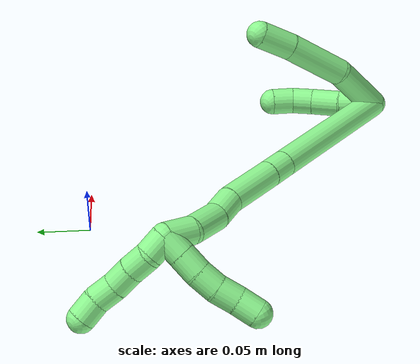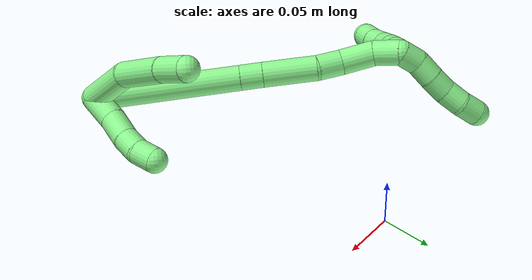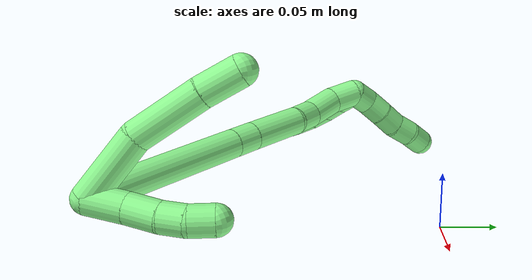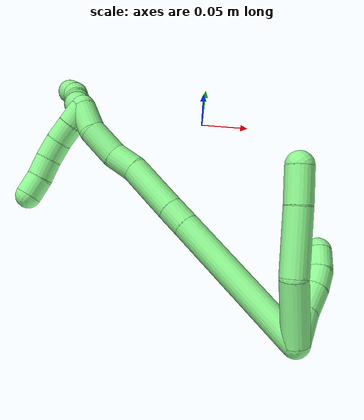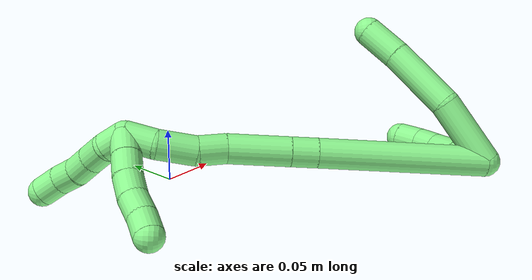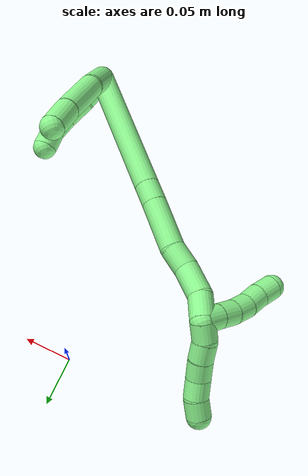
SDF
<sdf version="1.7">
 <world name="default">
  <model name="13">
   <static>0</static>
   <link name="13">
    <collision name="collision-cylinder-e_1_2_8">
     <pose>-0.022737 -0.005674 0.017538 0.3129 -0.889568 -0.150086</pose>
     <geometry><cylinder><radius>0.0125</radius><length>0.05854</length></cylinder></geometry>
     <surface>
      <friction><ode><mu>1.16</mu><mu2>1.16</mu2><slip1>0</slip1><slip2>0</slip2></ode></friction>
      <contact><ode><kp>1e+06</kp><kd>1</kd><max_vel>0</max_vel><min_depth>0.001</min_depth></ode></contact>
     </surface>
    </collision>
    <visual name="visual-cylinder-e_1_2_8">
     <pose>-0.022737 -0.005674 0.017538 0.3129 -0.889568 -0.150086</pose>
     <geometry><cylinder><radius>0.0125</radius><length>0.05854</length></cylinder></geometry>
     <material><ambient>0.564706 0.984314 0.572549 1</ambient></material>
    </visual>
    <collision name="collision-cylinder-e_2_8_9">
     <pose>-0.063159 -0.024508 0.054387 0.598162 -0.64782 -0.206299</pose>
     <geometry><cylinder><radius>0.0125</radius><length>0.058613</length></cylinder></geometry>
     <surface>
      <friction><ode><mu>1.16</mu><mu2>1.16</mu2><slip1>0</slip1><slip2>0</slip2></ode></friction>
      <contact><ode><kp>1e+06</kp><kd>1</kd><max_vel>0</max_vel><min_depth>0.001</min_depth></ode></contact>
     </surface>
    </collision>
    <visual name="visual-cylinder-e_2_8_9">
     <pose>-0.063159 -0.024508 0.054387 0.598162 -0.64782 -0.206299</pose>
     <geometry><cylinder><radius>0.0125</radius><length>0.058613</length></cylinder></geometry>
     <material><ambient>0.564706 0.984314 0.572549 1</ambient></material>
    </visual>
    <collision name="collision-cylinder-e_3_9_6">
     <pose>-0.089618 -0.045512 0.085153 0.600526 -0.563591 -0.178794</pose>
     <geometry><cylinder><radius>0.0125</radius><length>0.032847</length></cylinder></geometry>
     <surface>
      <friction><ode><mu>1.16</mu><mu2>1.16</mu2><slip1>0</slip1><slip2>0</slip2></ode></friction>
      <contact><ode><kp>1e+06</kp><kd>1</kd><max_vel>0</max_vel><min_depth>0.001</min_depth></ode></contact>
     </surface>
    </collision>
    <visual name="visual-cylinder-e_3_9_6">
     <pose>-0.089618 -0.045512 0.085153 0.600526 -0.563591 -0.178794</pose>
     <geometry><cylinder><radius>0.0125</radius><length>0.032847</length></cylinder></geometry>
     <material><ambient>0.564706 0.984314 0.572549 1</ambient></material>
    </visual>
    <collision name="collision-cylinder-e_1_2_10">
     <pose>0.000333 -0.013709 0.008645 1.00821 0.020549 0.011336</pose>
     <geometry><cylinder><radius>0.0125</radius><length>0.032421</length></cylinder></geometry>
     <surface>
      <friction><ode><mu>1.16</mu><mu2>1.16</mu2><slip1>0</slip1><slip2>0</slip2></ode></friction>
      <contact><ode><kp>1e+06</kp><kd>1</kd><max_vel>0</max_vel><min_depth>0.001</min_depth></ode></contact>
     </surface>
    </collision>
    <visual name="visual-cylinder-e_1_2_10">
     <pose>0.000333 -0.013709 0.008645 1.00821 0.020549 0.011336</pose>
     <geometry><cylinder><radius>0.0125</radius><length>0.032421</length></cylinder></geometry>
     <material><ambient>0.564706 0.984314 0.572549 1</ambient></material>
    </visual>
    <collision name="collision-cylinder-e_2_10_11">
     <pose>0.000522 -0.039562 0.023197 1.11797 -0.010655 -0.006665</pose>
     <geometry><cylinder><radius>0.0125</radius><length>0.02701</length></cylinder></geometry>
     <surface>
      <friction><ode><mu>1.16</mu><mu2>1.16</mu2><slip1>0</slip1><slip2>0</slip2></ode></friction>
      <contact><ode><kp>1e+06</kp><kd>1</kd><max_vel>0</max_vel><min_depth>0.001</min_depth></ode></contact>
     </surface>
    </collision>
    <visual name="visual-cylinder-e_2_10_11">
     <pose>0.000522 -0.039562 0.023197 1.11797 -0.010655 -0.006665</pose>
     <geometry><cylinder><radius>0.0125</radius><length>0.02701</length></cylinder></geometry>
     <material><ambient>0.564706 0.984314 0.572549 1</ambient></material>
    </visual>
    <collision name="collision-cylinder-e_3_11_12">
     <pose>-0.000228 -0.06009 0.03469 0.983217 -0.060106 -0.032191</pose>
     <geometry><cylinder><radius>0.0125</radius><length>0.020186</length></cylinder></geometry>
     <surface>
      <friction><ode><mu>1.16</mu><mu2>1.16</mu2><slip1>0</slip1><slip2>0</slip2></ode></friction>
      <contact><ode><kp>1e+06</kp><kd>1</kd><max_vel>0</max_vel><min_depth>0.001</min_depth></ode></contact>
     </surface>
    </collision>
    <visual name="visual-cylinder-e_3_11_12">
     <pose>-0.000228 -0.06009 0.03469 0.983217 -0.060106 -0.032191</pose>
     <geometry><cylinder><radius>0.0125</radius><length>0.020186</length></cylinder></geometry>
     <material><ambient>0.564706 0.984314 0.572549 1</ambient></material>
    </visual>
    <collision name="collision-cylinder-e_4_12_5">
     <pose>-0.001652 -0.07502 0.048044 0.700064 -0.080327 -0.029338</pose>
     <geometry><cylinder><radius>0.0125</radius><length>0.020383</length></cylinder></geometry>
     <surface>
      <friction><ode><mu>1.16</mu><mu2>1.16</mu2><slip1>0</slip1><slip2>0</slip2></ode></friction>
      <contact><ode><kp>1e+06</kp><kd>1</kd><max_vel>0</max_vel><min_depth>0.001</min_depth></ode></contact>
     </surface>
    </collision>
    <visual name="visual-cylinder-e_4_12_5">
     <pose>-0.001652 -0.07502 0.048044 0.700064 -0.080327 -0.029338</pose>
     <geometry><cylinder><radius>0.0125</radius><length>0.020383</length></cylinder></geometry>
     <material><ambient>0.564706 0.984314 0.572549 1</ambient></material>
    </visual>
    <collision name="collision-cylinder-e_1_2_13">
     <pose>-0.000969 0.003128 0.070473 -0.044361 -0.013739 0.000305</pose>
     <geometry><cylinder><radius>0.0125</radius><length>0.141098</length></cylinder></geometry>
     <surface>
      <friction><ode><mu>1.16</mu><mu2>1.16</mu2><slip1>0</slip1><slip2>0</slip2></ode></friction>
      <contact><ode><kp>1e+06</kp><kd>1</kd><max_vel>0</max_vel><min_depth>0.001</min_depth></ode></contact>
     </surface>
    </collision>
    <visual name="visual-cylinder-e_1_2_13">
     <pose>-0.000969 0.003128 0.070473 -0.044361 -0.013739 0.000305</pose>
     <geometry><cylinder><radius>0.0125</radius><length>0.141098</length></cylinder></geometry>
     <material><ambient>0.564706 0.984314 0.572549 1</ambient></material>
    </visual>
    <collision name="collision-cylinder-e_2_13_14">
     <pose>-0.00205 0.006768 0.151906 -0.046603 -0.010146 0.000236</pose>
     <geometry><cylinder><radius>0.0125</radius><length>0.021947</length></cylinder></geometry>
     <surface>
      <friction><ode><mu>1.16</mu><mu2>1.16</mu2><slip1>0</slip1><slip2>0</slip2></ode></friction>
      <contact><ode><kp>1e+06</kp><kd>1</kd><max_vel>0</max_vel><min_depth>0.001</min_depth></ode></contact>
     </surface>
    </collision>
    <visual name="visual-cylinder-e_2_13_14">
     <pose>-0.00205 0.006768 0.151906 -0.046603 -0.010146 0.000236</pose>
     <geometry><cylinder><radius>0.0125</radius><length>0.021947</length></cylinder></geometry>
     <material><ambient>0.564706 0.984314 0.572549 1</ambient></material>
    </visual>
    <collision name="collision-cylinder-e_3_14_15">
     <pose>-0.002418 0.008116 0.189282 -0.031666 -0.009736 0.000154</pose>
     <geometry><cylinder><radius>0.0125</radius><length>0.052859</length></cylinder></geometry>
     <surface>
      <friction><ode><mu>1.16</mu><mu2>1.16</mu2><slip1>0</slip1><slip2>0</slip2></ode></friction>
      <contact><ode><kp>1e+06</kp><kd>1</kd><max_vel>0</max_vel><min_depth>0.001</min_depth></ode></contact>
     </surface>
    </collision>
    <visual name="visual-cylinder-e_3_14_15">
     <pose>-0.002418 0.008116 0.189282 -0.031666 -0.009736 0.000154</pose>
     <geometry><cylinder><radius>0.0125</radius><length>0.052859</length></cylinder></geometry>
     <material><ambient>0.564706 0.984314 0.572549 1</ambient></material>
    </visual>
    <collision name="collision-cylinder-e_4_15_16">
     <pose>-0.001701 0.0118 0.227592 -0.234994 0.079567 -0.009397</pose>
     <geometry><cylinder><radius>0.0125</radius><length>0.024539</length></cylinder></geometry>
     <surface>
      <friction><ode><mu>1.16</mu><mu2>1.16</mu2><slip1>0</slip1><slip2>0</slip2></ode></friction>
      <contact><ode><kp>1e+06</kp><kd>1</kd><max_vel>0</max_vel><min_depth>0.001</min_depth></ode></contact>
     </surface>
    </collision>
    <visual name="visual-cylinder-e_4_15_16">
     <pose>-0.001701 0.0118 0.227592 -0.234994 0.079567 -0.009397</pose>
     <geometry><cylinder><radius>0.0125</radius><length>0.024539</length></cylinder></geometry>
     <material><ambient>0.564706 0.984314 0.572549 1</ambient></material>
    </visual>
    <collision name="collision-cylinder-e_5_16_17">
     <pose>-0.003099 0.016592 0.255798 -0.118625 -0.143498 0.008536</pose>
     <geometry><cylinder><radius>0.0125</radius><length>0.033193</length></cylinder></geometry>
     <surface>
      <friction><ode><mu>1.16</mu><mu2>1.16</mu2><slip1>0</slip1><slip2>0</slip2></ode></friction>
      <contact><ode><kp>1e+06</kp><kd>1</kd><max_vel>0</max_vel><min_depth>0.001</min_depth></ode></contact>
     </surface>
    </collision>
    <visual name="visual-cylinder-e_5_16_17">
     <pose>-0.003099 0.016592 0.255798 -0.118625 -0.143498 0.008536</pose>
     <geometry><cylinder><radius>0.0125</radius><length>0.033193</length></cylinder></geometry>
     <material><ambient>0.564706 0.984314 0.572549 1</ambient></material>
    </visual>
    <collision name="collision-cylinder-e_6_17_1">
     <pose>-0.007801 0.015562 0.284737 0.231251 -0.177599 -0.020681</pose>
     <geometry><cylinder><radius>0.0125</radius><length>0.026364</length></cylinder></geometry>
     <surface>
      <friction><ode><mu>1.16</mu><mu2>1.16</mu2><slip1>0</slip1><slip2>0</slip2></ode></friction>
      <contact><ode><kp>1e+06</kp><kd>1</kd><max_vel>0</max_vel><min_depth>0.001</min_depth></ode></contact>
     </surface>
    </collision>
    <visual name="visual-cylinder-e_6_17_1">
     <pose>-0.007801 0.015562 0.284737 0.231251 -0.177599 -0.020681</pose>
     <geometry><cylinder><radius>0.0125</radius><length>0.026364</length></cylinder></geometry>
     <material><ambient>0.564706 0.984314 0.572549 1</ambient></material>
    </visual>
    <collision name="collision-cylinder-e_1_1_18">
     <pose>-0.003455 0.019888 0.295894 -1.76987 0.730804 -0.874583</pose>
     <geometry><cylinder><radius>0.0125</radius><length>0.02</length></cylinder></geometry>
     <surface>
      <friction><ode><mu>1.16</mu><mu2>1.16</mu2><slip1>0</slip1><slip2>0</slip2></ode></friction>
      <contact><ode><kp>1e+06</kp><kd>1</kd><max_vel>0</max_vel><min_depth>0.001</min_depth></ode></contact>
     </surface>
    </collision>
    <visual name="visual-cylinder-e_1_1_18">
     <pose>-0.003455 0.019888 0.295894 -1.76987 0.730804 -0.874583</pose>
     <geometry><cylinder><radius>0.0125</radius><length>0.02</length></cylinder></geometry>
     <material><ambient>0.564706 0.984314 0.572549 1</ambient></material>
    </visual>
    <collision name="collision-cylinder-e_2_18_19">
     <pose>0.010077 0.034325 0.292999 -1.76745 0.755648 -0.901148</pose>
     <geometry><cylinder><radius>0.0125</radius><length>0.02</length></cylinder></geometry>
     <surface>
      <friction><ode><mu>1.16</mu><mu2>1.16</mu2><slip1>0</slip1><slip2>0</slip2></ode></friction>
      <contact><ode><kp>1e+06</kp><kd>1</kd><max_vel>0</max_vel><min_depth>0.001</min_depth></ode></contact>
     </surface>
    </collision>
    <visual name="visual-cylinder-e_2_18_19">
     <pose>0.010077 0.034325 0.292999 -1.76745 0.755648 -0.901148</pose>
     <geometry><cylinder><radius>0.0125</radius><length>0.02</length></cylinder></geometry>
     <material><ambient>0.564706 0.984314 0.572549 1</ambient></material>
    </visual>
    <collision name="collision-cylinder-e_3_19_20">
     <pose>0.023346 0.048626 0.288822 -1.938 0.695967 -0.971879</pose>
     <geometry><cylinder><radius>0.0125</radius><length>0.02</length></cylinder></geometry>
     <surface>
      <friction><ode><mu>1.16</mu><mu2>1.16</mu2><slip1>0</slip1><slip2>0</slip2></ode></friction>
      <contact><ode><kp>1e+06</kp><kd>1</kd><max_vel>0</max_vel><min_depth>0.001</min_depth></ode></contact>
     </surface>
    </collision>
    <visual name="visual-cylinder-e_3_19_20">
     <pose>0.023346 0.048626 0.288822 -1.938 0.695967 -0.971879</pose>
     <geometry><cylinder><radius>0.0125</radius><length>0.02</length></cylinder></geometry>
     <material><ambient>0.564706 0.984314 0.572549 1</ambient></material>
    </visual>
    <collision name="collision-cylinder-e_4_20_21">
     <pose>0.035167 0.063052 0.281827 -2.09914 0.571572 -0.945971</pose>
     <geometry><cylinder><radius>0.0125</radius><length>0.02</length></cylinder></geometry>
     <surface>
      <friction><ode><mu>1.16</mu><mu2>1.16</mu2><slip1>0</slip1><slip2>0</slip2></ode></friction>
      <contact><ode><kp>1e+06</kp><kd>1</kd><max_vel>0</max_vel><min_depth>0.001</min_depth></ode></contact>
     </surface>
    </collision>
    <visual name="visual-cylinder-e_4_20_21">
     <pose>0.035167 0.063052 0.281827 -2.09914 0.571572 -0.945971</pose>
     <geometry><cylinder><radius>0.0125</radius><length>0.02</length></cylinder></geometry>
     <material><ambient>0.564706 0.984314 0.572549 1</ambient></material>
    </visual>
    <collision name="collision-cylinder-e_5_21_4">
     <pose>0.045638 0.078315 0.274362 -1.95411 0.530664 -0.765462</pose>
     <geometry><cylinder><radius>0.0125</radius><length>0.02</length></cylinder></geometry>
     <surface>
      <friction><ode><mu>1.16</mu><mu2>1.16</mu2><slip1>0</slip1><slip2>0</slip2></ode></friction>
      <contact><ode><kp>1e+06</kp><kd>1</kd><max_vel>0</max_vel><min_depth>0.001</min_depth></ode></contact>
     </surface>
    </collision>
    <visual name="visual-cylinder-e_5_21_4">
     <pose>0.045638 0.078315 0.274362 -1.95411 0.530664 -0.765462</pose>
     <geometry><cylinder><radius>0.0125</radius><length>0.02</length></cylinder></geometry>
     <material><ambient>0.564706 0.984314 0.572549 1</ambient></material>
    </visual>
    <collision name="collision-cylinder-e_1_1_22">
     <pose>-0.004365 0.010176 0.305173 0.299737 0.614439 0.095741</pose>
     <geometry><cylinder><radius>0.0125</radius><length>0.02</length></cylinder></geometry>
     <surface>
      <friction><ode><mu>1.16</mu><mu2>1.16</mu2><slip1>0</slip1><slip2>0</slip2></ode></friction>
      <contact><ode><kp>1e+06</kp><kd>1</kd><max_vel>0</max_vel><min_depth>0.001</min_depth></ode></contact>
     </surface>
    </collision>
    <visual name="visual-cylinder-e_1_1_22">
     <pose>-0.004365 0.010176 0.305173 0.299737 0.614439 0.095741</pose>
     <geometry><cylinder><radius>0.0125</radius><length>0.02</length></cylinder></geometry>
     <material><ambient>0.564706 0.984314 0.572549 1</ambient></material>
    </visual>
    <collision name="collision-cylinder-e_2_22_23">
     <pose>0.007476 0.002562 0.318983 0.71399 0.652942 0.251239</pose>
     <geometry><cylinder><radius>0.0125</radius><length>0.02</length></cylinder></geometry>
     <surface>
      <friction><ode><mu>1.16</mu><mu2>1.16</mu2><slip1>0</slip1><slip2>0</slip2></ode></friction>
      <contact><ode><kp>1e+06</kp><kd>1</kd><max_vel>0</max_vel><min_depth>0.001</min_depth></ode></contact>
     </surface>
    </collision>
    <visual name="visual-cylinder-e_2_22_23">
     <pose>0.007476 0.002562 0.318983 0.71399 0.652942 0.251239</pose>
     <geometry><cylinder><radius>0.0125</radius><length>0.02</length></cylinder></geometry>
     <material><ambient>0.564706 0.984314 0.572549 1</ambient></material>
    </visual>
    <collision name="collision-cylinder-e_3_23_24">
     <pose>0.019997 -0.007004 0.331263 0.607578 0.700504 0.228053</pose>
     <geometry><cylinder><radius>0.0125</radius><length>0.02</length></cylinder></geometry>
     <surface>
      <friction><ode><mu>1.16</mu><mu2>1.16</mu2><slip1>0</slip1><slip2>0</slip2></ode></friction>
      <contact><ode><kp>1e+06</kp><kd>1</kd><max_vel>0</max_vel><min_depth>0.001</min_depth></ode></contact>
     </surface>
    </collision>
    <visual name="visual-cylinder-e_3_23_24">
     <pose>0.019997 -0.007004 0.331263 0.607578 0.700504 0.228053</pose>
     <geometry><cylinder><radius>0.0125</radius><length>0.02</length></cylinder></geometry>
     <material><ambient>0.564706 0.984314 0.572549 1</ambient></material>
    </visual>
    <collision name="collision-cylinder-e_4_24_25">
     <pose>0.031428 -0.015954 0.344897 0.557306 0.521868 0.152492</pose>
     <geometry><cylinder><radius>0.0125</radius><length>0.02</length></cylinder></geometry>
     <surface>
      <friction><ode><mu>1.16</mu><mu2>1.16</mu2><slip1>0</slip1><slip2>0</slip2></ode></friction>
      <contact><ode><kp>1e+06</kp><kd>1</kd><max_vel>0</max_vel><min_depth>0.001</min_depth></ode></contact>
     </surface>
    </collision>
    <visual name="visual-cylinder-e_4_24_25">
     <pose>0.031428 -0.015954 0.344897 0.557306 0.521868 0.152492</pose>
     <geometry><cylinder><radius>0.0125</radius><length>0.02</length></cylinder></geometry>
     <material><ambient>0.564706 0.984314 0.572549 1</ambient></material>
    </visual>
    <collision name="collision-cylinder-e_5_25_3">
     <pose>0.04246 -0.022756 0.359904 0.282177 0.649346 0.095539</pose>
     <geometry><cylinder><radius>0.0125</radius><length>0.02</length></cylinder></geometry>
     <surface>
      <friction><ode><mu>1.16</mu><mu2>1.16</mu2><slip1>0</slip1><slip2>0</slip2></ode></friction>
      <contact><ode><kp>1e+06</kp><kd>1</kd><max_vel>0</max_vel><min_depth>0.001</min_depth></ode></contact>
     </surface>
    </collision>
    <visual name="visual-cylinder-e_5_25_3">
     <pose>0.04246 -0.022756 0.359904 0.282177 0.649346 0.095539</pose>
     <geometry><cylinder><radius>0.0125</radius><length>0.02</length></cylinder></geometry>
     <material><ambient>0.564706 0.984314 0.572549 1</ambient></material>
    </visual>
    <collision name="collision-sphere-3">
     <pose>0.048506 -0.024974 0.367554 0 -0 0</pose>
     <geometry><sphere><radius>0.0125</radius></sphere></geometry>
     <surface>
      <friction><ode><mu>1.16</mu><mu2>1.16</mu2><slip1>0</slip1><slip2>0</slip2></ode></friction>
      <contact><ode><kp>1e+06</kp><kd>1</kd><max_vel>0</max_vel><min_depth>0.001</min_depth></ode></contact>
     </surface>
    </collision>
    <visual name="visual-sphere-3">
     <pose>0.048506 -0.024974 0.367554 0 -0 0</pose>
     <geometry><sphere><radius>0.0125</radius></sphere></geometry>
     <material><ambient>0.564706 0.984314 0.572549 1</ambient></material>
    </visual>
    <collision name="collision-sphere-25">
     <pose>0.036413 -0.020539 0.352254 0 -0 0</pose>
     <geometry><sphere><radius>0.0125</radius></sphere></geometry>
     <surface>
      <friction><ode><mu>1.16</mu><mu2>1.16</mu2><slip1>0</slip1><slip2>0</slip2></ode></friction>
      <contact><ode><kp>1e+06</kp><kd>1</kd><max_vel>0</max_vel><min_depth>0.001</min_depth></ode></contact>
     </surface>
    </collision>
    <visual name="visual-sphere-25">
     <pose>0.036413 -0.020539 0.352254 0 -0 0</pose>
     <geometry><sphere><radius>0.0125</radius></sphere></geometry>
     <material><ambient>0.564706 0.984314 0.572549 1</ambient></material>
    </visual>
    <collision name="collision-sphere-24">
     <pose>0.026443 -0.011369 0.33754 0 -0 0</pose>
     <geometry><sphere><radius>0.0125</radius></sphere></geometry>
     <surface>
      <friction><ode><mu>1.16</mu><mu2>1.16</mu2><slip1>0</slip1><slip2>0</slip2></ode></friction>
      <contact><ode><kp>1e+06</kp><kd>1</kd><max_vel>0</max_vel><min_depth>0.001</min_depth></ode></contact>
     </surface>
    </collision>
    <visual name="visual-sphere-24">
     <pose>0.026443 -0.011369 0.33754 0 -0 0</pose>
     <geometry><sphere><radius>0.0125</radius></sphere></geometry>
     <material><ambient>0.564706 0.984314 0.572549 1</ambient></material>
    </visual>
    <collision name="collision-sphere-23">
     <pose>0.013551 -0.00264 0.324986 0 -0 0</pose>
     <geometry><sphere><radius>0.0125</radius></sphere></geometry>
     <surface>
      <friction><ode><mu>1.16</mu><mu2>1.16</mu2><slip1>0</slip1><slip2>0</slip2></ode></friction>
      <contact><ode><kp>1e+06</kp><kd>1</kd><max_vel>0</max_vel><min_depth>0.001</min_depth></ode></contact>
     </surface>
    </collision>
    <visual name="visual-sphere-23">
     <pose>0.013551 -0.00264 0.324986 0 -0 0</pose>
     <geometry><sphere><radius>0.0125</radius></sphere></geometry>
     <material><ambient>0.564706 0.984314 0.572549 1</ambient></material>
    </visual>
    <collision name="collision-sphere-22">
     <pose>0.0014 0.007763 0.31298 0 -0 0</pose>
     <geometry><sphere><radius>0.0125</radius></sphere></geometry>
     <surface>
      <friction><ode><mu>1.16</mu><mu2>1.16</mu2><slip1>0</slip1><slip2>0</slip2></ode></friction>
      <contact><ode><kp>1e+06</kp><kd>1</kd><max_vel>0</max_vel><min_depth>0.001</min_depth></ode></contact>
     </surface>
    </collision>
    <visual name="visual-sphere-22">
     <pose>0.0014 0.007763 0.31298 0 -0 0</pose>
     <geometry><sphere><radius>0.0125</radius></sphere></geometry>
     <material><ambient>0.564706 0.984314 0.572549 1</ambient></material>
    </visual>
    <collision name="collision-sphere-4">
     <pose>0.050699 0.086314 0.271136 0 -0 0</pose>
     <geometry><sphere><radius>0.0125</radius></sphere></geometry>
     <surface>
      <friction><ode><mu>1.16</mu><mu2>1.16</mu2><slip1>0</slip1><slip2>0</slip2></ode></friction>
      <contact><ode><kp>1e+06</kp><kd>1</kd><max_vel>0</max_vel><min_depth>0.001</min_depth></ode></contact>
     </surface>
    </collision>
    <visual name="visual-sphere-4">
     <pose>0.050699 0.086314 0.271136 0 -0 0</pose>
     <geometry><sphere><radius>0.0125</radius></sphere></geometry>
     <material><ambient>0.564706 0.984314 0.572549 1</ambient></material>
    </visual>
    <collision name="collision-sphere-21">
     <pose>0.040577 0.070316 0.277587 0 -0 0</pose>
     <geometry><sphere><radius>0.0125</radius></sphere></geometry>
     <surface>
      <friction><ode><mu>1.16</mu><mu2>1.16</mu2><slip1>0</slip1><slip2>0</slip2></ode></friction>
      <contact><ode><kp>1e+06</kp><kd>1</kd><max_vel>0</max_vel><min_depth>0.001</min_depth></ode></contact>
     </surface>
    </collision>
    <visual name="visual-sphere-21">
     <pose>0.040577 0.070316 0.277587 0 -0 0</pose>
     <geometry><sphere><radius>0.0125</radius></sphere></geometry>
     <material><ambient>0.564706 0.984314 0.572549 1</ambient></material>
    </visual>
    <collision name="collision-sphere-20">
     <pose>0.029757 0.055789 0.286067 0 -0 0</pose>
     <geometry><sphere><radius>0.0125</radius></sphere></geometry>
     <surface>
      <friction><ode><mu>1.16</mu><mu2>1.16</mu2><slip1>0</slip1><slip2>0</slip2></ode></friction>
      <contact><ode><kp>1e+06</kp><kd>1</kd><max_vel>0</max_vel><min_depth>0.001</min_depth></ode></contact>
     </surface>
    </collision>
    <visual name="visual-sphere-20">
     <pose>0.029757 0.055789 0.286067 0 -0 0</pose>
     <geometry><sphere><radius>0.0125</radius></sphere></geometry>
     <material><ambient>0.564706 0.984314 0.572549 1</ambient></material>
    </visual>
    <collision name="collision-sphere-11">
     <pose>0.000378 -0.051705 0.029106 0 -0 0</pose>
     <geometry><sphere><radius>0.0125</radius></sphere></geometry>
     <surface>
      <friction><ode><mu>1.16</mu><mu2>1.16</mu2><slip1>0</slip1><slip2>0</slip2></ode></friction>
      <contact><ode><kp>1e+06</kp><kd>1</kd><max_vel>0</max_vel><min_depth>0.001</min_depth></ode></contact>
     </surface>
    </collision>
    <visual name="visual-sphere-11">
     <pose>0.000378 -0.051705 0.029106 0 -0 0</pose>
     <geometry><sphere><radius>0.0125</radius></sphere></geometry>
     <material><ambient>0.564706 0.984314 0.572549 1</ambient></material>
    </visual>
    <collision name="collision-sphere-10">
     <pose>0.000666 -0.027419 0.017289 0 -0 0</pose>
     <geometry><sphere><radius>0.0125</radius></sphere></geometry>
     <surface>
      <friction><ode><mu>1.16</mu><mu2>1.16</mu2><slip1>0</slip1><slip2>0</slip2></ode></friction>
      <contact><ode><kp>1e+06</kp><kd>1</kd><max_vel>0</max_vel><min_depth>0.001</min_depth></ode></contact>
     </surface>
    </collision>
    <visual name="visual-sphere-10">
     <pose>0.000666 -0.027419 0.017289 0 -0 0</pose>
     <geometry><sphere><radius>0.0125</radius></sphere></geometry>
     <material><ambient>0.564706 0.984314 0.572549 1</ambient></material>
    </visual>
    <collision name="collision-sphere-6">
     <pose>-0.098392 -0.053358 0.096607 0 -0 0</pose>
     <geometry><sphere><radius>0.0125</radius></sphere></geometry>
     <surface>
      <friction><ode><mu>1.16</mu><mu2>1.16</mu2><slip1>0</slip1><slip2>0</slip2></ode></friction>
      <contact><ode><kp>1e+06</kp><kd>1</kd><max_vel>0</max_vel><min_depth>0.001</min_depth></ode></contact>
     </surface>
    </collision>
    <visual name="visual-sphere-6">
     <pose>-0.098392 -0.053358 0.096607 0 -0 0</pose>
     <geometry><sphere><radius>0.0125</radius></sphere></geometry>
     <material><ambient>0.564706 0.984314 0.572549 1</ambient></material>
    </visual>
    <collision name="collision-sphere-9">
     <pose>-0.080844 -0.037667 0.073699 0 -0 0</pose>
     <geometry><sphere><radius>0.0125</radius></sphere></geometry>
     <surface>
      <friction><ode><mu>1.16</mu><mu2>1.16</mu2><slip1>0</slip1><slip2>0</slip2></ode></friction>
      <contact><ode><kp>1e+06</kp><kd>1</kd><max_vel>0</max_vel><min_depth>0.001</min_depth></ode></contact>
     </surface>
    </collision>
    <visual name="visual-sphere-9">
     <pose>-0.080844 -0.037667 0.073699 0 -0 0</pose>
     <geometry><sphere><radius>0.0125</radius></sphere></geometry>
     <material><ambient>0.564706 0.984314 0.572549 1</ambient></material>
    </visual>
    <collision name="collision-sphere-2">
     <geometry><sphere><radius>0.0125</radius></sphere></geometry>
     <surface>
      <friction><ode><mu>1.16</mu><mu2>1.16</mu2><slip1>0</slip1><slip2>0</slip2></ode></friction>
      <contact><ode><kp>1e+06</kp><kd>1</kd><max_vel>0</max_vel><min_depth>0.001</min_depth></ode></contact>
     </surface>
    </collision>
    <visual name="visual-sphere-2">
     <geometry><sphere><radius>0.0125</radius></sphere></geometry>
     <material><ambient>0.564706 0.984314 0.572549 1</ambient></material>
    </visual>
    <collision name="collision-sphere-19">
     <pose>0.016935 0.041463 0.291577 0 -0 0</pose>
     <geometry><sphere><radius>0.0125</radius></sphere></geometry>
     <surface>
      <friction><ode><mu>1.16</mu><mu2>1.16</mu2><slip1>0</slip1><slip2>0</slip2></ode></friction>
      <contact><ode><kp>1e+06</kp><kd>1</kd><max_vel>0</max_vel><min_depth>0.001</min_depth></ode></contact>
     </surface>
    </collision>
    <visual name="visual-sphere-19">
     <pose>0.016935 0.041463 0.291577 0 -0 0</pose>
     <geometry><sphere><radius>0.0125</radius></sphere></geometry>
     <material><ambient>0.564706 0.984314 0.572549 1</ambient></material>
    </visual>
    <collision name="collision-sphere-8">
     <pose>-0.045474 -0.011348 0.035076 0 -0 0</pose>
     <geometry><sphere><radius>0.0125</radius></sphere></geometry>
     <surface>
      <friction><ode><mu>1.16</mu><mu2>1.16</mu2><slip1>0</slip1><slip2>0</slip2></ode></friction>
      <contact><ode><kp>1e+06</kp><kd>1</kd><max_vel>0</max_vel><min_depth>0.001</min_depth></ode></contact>
     </surface>
    </collision>
    <visual name="visual-sphere-8">
     <pose>-0.045474 -0.011348 0.035076 0 -0 0</pose>
     <geometry><sphere><radius>0.0125</radius></sphere></geometry>
     <material><ambient>0.564706 0.984314 0.572549 1</ambient></material>
    </visual>
    <collision name="collision-sphere-12">
     <pose>-0.000834 -0.068475 0.040275 0 -0 0</pose>
     <geometry><sphere><radius>0.0125</radius></sphere></geometry>
     <surface>
      <friction><ode><mu>1.16</mu><mu2>1.16</mu2><slip1>0</slip1><slip2>0</slip2></ode></friction>
      <contact><ode><kp>1e+06</kp><kd>1</kd><max_vel>0</max_vel><min_depth>0.001</min_depth></ode></contact>
     </surface>
    </collision>
    <visual name="visual-sphere-12">
     <pose>-0.000834 -0.068475 0.040275 0 -0 0</pose>
     <geometry><sphere><radius>0.0125</radius></sphere></geometry>
     <material><ambient>0.564706 0.984314 0.572549 1</ambient></material>
    </visual>
    <collision name="collision-sphere-5">
     <pose>-0.00247 -0.081565 0.055814 0 -0 0</pose>
     <geometry><sphere><radius>0.0125</radius></sphere></geometry>
     <surface>
      <friction><ode><mu>1.16</mu><mu2>1.16</mu2><slip1>0</slip1><slip2>0</slip2></ode></friction>
      <contact><ode><kp>1e+06</kp><kd>1</kd><max_vel>0</max_vel><min_depth>0.001</min_depth></ode></contact>
     </surface>
    </collision>
    <visual name="visual-sphere-5">
     <pose>-0.00247 -0.081565 0.055814 0 -0 0</pose>
     <geometry><sphere><radius>0.0125</radius></sphere></geometry>
     <material><ambient>0.564706 0.984314 0.572549 1</ambient></material>
    </visual>
    <collision name="collision-sphere-13">
     <pose>-0.001938 0.006257 0.140945 0 -0 0</pose>
     <geometry><sphere><radius>0.0125</radius></sphere></geometry>
     <surface>
      <friction><ode><mu>1.16</mu><mu2>1.16</mu2><slip1>0</slip1><slip2>0</slip2></ode></friction>
      <contact><ode><kp>1e+06</kp><kd>1</kd><max_vel>0</max_vel><min_depth>0.001</min_depth></ode></contact>
     </surface>
    </collision>
    <visual name="visual-sphere-13">
     <pose>-0.001938 0.006257 0.140945 0 -0 0</pose>
     <geometry><sphere><radius>0.0125</radius></sphere></geometry>
     <material><ambient>0.564706 0.984314 0.572549 1</ambient></material>
    </visual>
    <collision name="collision-sphere-14">
     <pose>-0.002161 0.007279 0.162867 0 -0 0</pose>
     <geometry><sphere><radius>0.0125</radius></sphere></geometry>
     <surface>
      <friction><ode><mu>1.16</mu><mu2>1.16</mu2><slip1>0</slip1><slip2>0</slip2></ode></friction>
      <contact><ode><kp>1e+06</kp><kd>1</kd><max_vel>0</max_vel><min_depth>0.001</min_depth></ode></contact>
     </surface>
    </collision>
    <visual name="visual-sphere-14">
     <pose>-0.002161 0.007279 0.162867 0 -0 0</pose>
     <geometry><sphere><radius>0.0125</radius></sphere></geometry>
     <material><ambient>0.564706 0.984314 0.572549 1</ambient></material>
    </visual>
    <collision name="collision-sphere-15">
     <pose>-0.002676 0.008952 0.215697 0 -0 0</pose>
     <geometry><sphere><radius>0.0125</radius></sphere></geometry>
     <surface>
      <friction><ode><mu>1.16</mu><mu2>1.16</mu2><slip1>0</slip1><slip2>0</slip2></ode></friction>
      <contact><ode><kp>1e+06</kp><kd>1</kd><max_vel>0</max_vel><min_depth>0.001</min_depth></ode></contact>
     </surface>
    </collision>
    <visual name="visual-sphere-15">
     <pose>-0.002676 0.008952 0.215697 0 -0 0</pose>
     <geometry><sphere><radius>0.0125</radius></sphere></geometry>
     <material><ambient>0.564706 0.984314 0.572549 1</ambient></material>
    </visual>
    <collision name="collision-sphere-16">
     <pose>-0.000725 0.014648 0.239487 0 -0 0</pose>
     <geometry><sphere><radius>0.0125</radius></sphere></geometry>
     <surface>
      <friction><ode><mu>1.16</mu><mu2>1.16</mu2><slip1>0</slip1><slip2>0</slip2></ode></friction>
      <contact><ode><kp>1e+06</kp><kd>1</kd><max_vel>0</max_vel><min_depth>0.001</min_depth></ode></contact>
     </surface>
    </collision>
    <visual name="visual-sphere-16">
     <pose>-0.000725 0.014648 0.239487 0 -0 0</pose>
     <geometry><sphere><radius>0.0125</radius></sphere></geometry>
     <material><ambient>0.564706 0.984314 0.572549 1</ambient></material>
    </visual>
    <collision name="collision-sphere-17">
     <pose>-0.005472 0.018536 0.272108 0 -0 0</pose>
     <geometry><sphere><radius>0.0125</radius></sphere></geometry>
     <surface>
      <friction><ode><mu>1.16</mu><mu2>1.16</mu2><slip1>0</slip1><slip2>0</slip2></ode></friction>
      <contact><ode><kp>1e+06</kp><kd>1</kd><max_vel>0</max_vel><min_depth>0.001</min_depth></ode></contact>
     </surface>
    </collision>
    <visual name="visual-sphere-17">
     <pose>-0.005472 0.018536 0.272108 0 -0 0</pose>
     <geometry><sphere><radius>0.0125</radius></sphere></geometry>
     <material><ambient>0.564706 0.984314 0.572549 1</ambient></material>
    </visual>
    <collision name="collision-sphere-1">
     <pose>-0.01013 0.012589 0.297367 0 -0 0</pose>
     <geometry><sphere><radius>0.0125</radius></sphere></geometry>
     <surface>
      <friction><ode><mu>1.16</mu><mu2>1.16</mu2><slip1>0</slip1><slip2>0</slip2></ode></friction>
      <contact><ode><kp>1e+06</kp><kd>1</kd><max_vel>0</max_vel><min_depth>0.001</min_depth></ode></contact>
     </surface>
    </collision>
    <visual name="visual-sphere-1">
     <pose>-0.01013 0.012589 0.297367 0 -0 0</pose>
     <geometry><sphere><radius>0.0125</radius></sphere></geometry>
     <material><ambient>0.564706 0.984314 0.572549 1</ambient></material>
    </visual>
    <collision name="collision-sphere-18">
     <pose>0.00322 0.027187 0.294421 0 -0 0</pose>
     <geometry><sphere><radius>0.0125</radius></sphere></geometry>
     <surface>
      <friction><ode><mu>1.16</mu><mu2>1.16</mu2><slip1>0</slip1><slip2>0</slip2></ode></friction>
      <contact><ode><kp>1e+06</kp><kd>1</kd><max_vel>0</max_vel><min_depth>0.001</min_depth></ode></contact>
     </surface>
    </collision>
    <visual name="visual-sphere-18">
     <pose>0.00322 0.027187 0.294421 0 -0 0</pose>
     <geometry><sphere><radius>0.0125</radius></sphere></geometry>
     <material><ambient>0.564706 0.984314 0.572549 1</ambient></material>
    </visual>
    <inertial>
     <pose>-0.005993 -0.001366 0.155127 0 -0 0</pose>
     <mass>0.75</mass>
     <inertia>
      <ixx>0.000306</ixx>
      <ixy>0</ixy>
      <ixz>0</ixz>
      <iyy>0.000301</iyy>
      <iyz>0</iyz>
      <izz>7.1e-05</izz>
     </inertia>
    </inertial>
   </link>
   <pose>0.099062 -0.278173 0.064847 1.23417 1.37463 -2.71326</pose>
  </model>
 </world>
</sdf>
